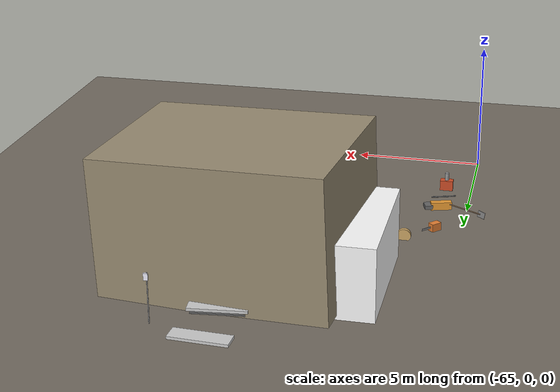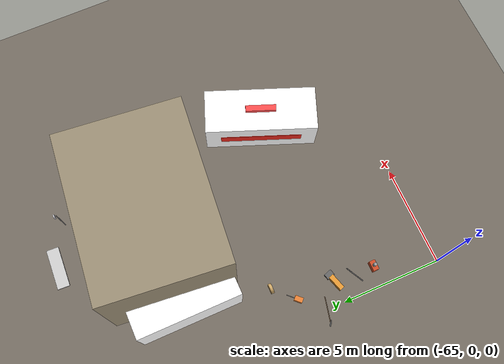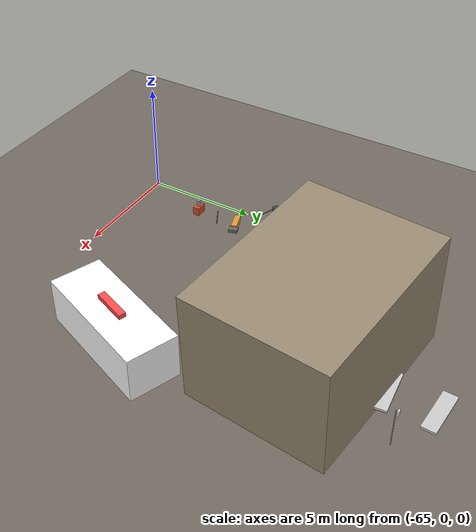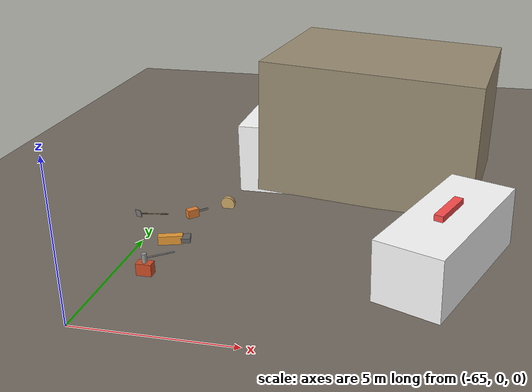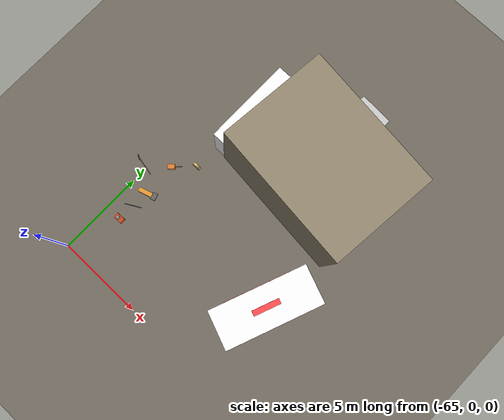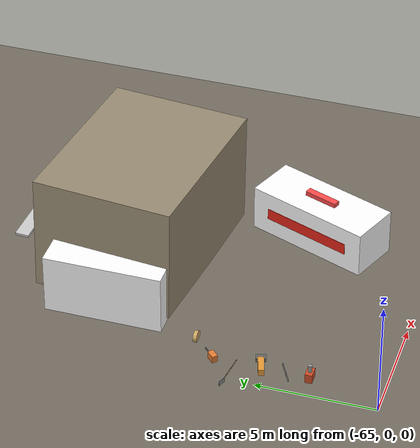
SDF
<sdf version="1.9">
 <world name="earthquake_zone">
  <model name="ground_plane">
   <static>true</static>
   <link name="link">
    <collision name="collision">
     <geometry><plane><normal>0 0 1</normal><size>300 300</size></plane></geometry>
     <surface><friction><ode><mu>100</mu><mu2>50</mu2></ode></friction></surface>
    </collision>
    <visual name="visual">
     <geometry><plane><normal>0 0 1</normal><size>300 300</size></plane></geometry>
     <material>
      <ambient>0.35 0.32 0.28 1</ambient>
      <diffuse>0.45 0.42 0.38 1</diffuse>
      <specular>0.05 0.05 0.05 1</specular>
     </material>
    </visual>
   </link>
  </model>
  <model name="shop_damaged">
   <static>true</static>
   <pose>-58 12 0 0 0.04 -0.1</pose>
   <link name="structure">
    <collision name="col"><geometry><box><size>8 6 5</size></box></geometry><pose>0 0 2.5 0 0 0</pose></collision>
    <visual name="facade">
     <pose>0 0 2.5 0 0 0</pose>
     <geometry><box><size>8 6 5</size></box></geometry>
     <material>
      <ambient>0.6 0.55 0.45 1</ambient>
      <diffuse>0.6 0.55 0.45 1</diffuse>
      <specular>0.2 0.2 0.2 1</specular>
      <pbr><metal><roughness>0.85</roughness><metalness>0.05</metalness></metal></pbr>
     </material>
    </visual>
   </link>
  </model>
  <model name="ambulance">
   <static>true</static>
   <pose>-55 5 0 0 0 1.2</pose>
   <link name="body">
    <collision name="col">
     <pose>0 0 1 0 0 0</pose>
     <geometry><box><size>5.5 2.2 2</size></box></geometry>
    </collision>
    <visual name="body">
     <pose>0 0 1 0 0 0</pose>
     <geometry><box><size>5.5 2.2 2</size></box></geometry>
     <material><ambient>0.9 0.9 0.9 1</ambient><diffuse>1 1 1 1</diffuse></material>
    </visual>
    <visual name="stripe">
     <pose>0 1.11 1 0 0 0</pose>
     <geometry><box><size>4 0.02 0.5</size></box></geometry>
     <material><ambient>0.8 0.1 0.05 1</ambient><diffuse>0.9 0.15 0.1 1</diffuse></material>
    </visual>
    <visual name="lightbar">
     <pose>0 0 2.1 0 0 0</pose>
     <geometry><box><size>1.5 0.3 0.2</size></box></geometry>
     <material>
      <ambient>0.8 0.2 0.2 1</ambient>
      <diffuse>1.0 0.3 0.3 1</diffuse>
      <emissive>1.0 0.2 0.2 1</emissive>
     </material>
    </visual>
   </link>
  </model>
  <model name="medical_tent">
   <static>true</static>
   <pose>-60 12 0 0 0 0</pose>
   <link name="tent">
    <collision name="col">
     <pose>0 0 1.3 0 0 0</pose>
     <geometry><box><size>6 5 2.6</size></box></geometry>
    </collision>
    <visual name="vis">
     <pose>0 0 1.3 0 0 0</pose>
     <geometry><box><size>6 5 2.6</size></box></geometry>
     <material><ambient>0.9 0.9 0.9 1</ambient><diffuse>1 1 1 1</diffuse></material>
    </visual>
    <visual name="cross_h">
     <pose>0 2.51 1.5 0 0 0</pose>
     <geometry><box><size>1.5 0.02 0.4</size></box></geometry>
     <material><ambient>0.8 0.1 0.1 1</ambient><diffuse>0.9 0.15 0.15 1</diffuse></material>
    </visual>
    <visual name="cross_v">
     <pose>0 2.51 1.5 0 0 0</pose>
     <geometry><box><size>0.4 0.02 1.5</size></box></geometry>
     <material><ambient>0.8 0.1 0.1 1</ambient><diffuse>0.9 0.15 0.15 1</diffuse></material>
    </visual>
   </link>
  </model>
  <model name="stretcher_1">
   <static>true</static>
   <pose>-58 15 0.3 0 0 0.1</pose>
   <link name="link">
    <visual name="bed">
     <geometry><box><size>2 0.6 0.1</size></box></geometry>
     <material><ambient>0.7 0.7 0.7 1</ambient><diffuse>0.8 0.8 0.8 1</diffuse></material>
    </visual>
    <visual name="frame">
     <pose>0 0 -0.15 0 0 0</pose>
     <geometry><box><size>1.8 0.5 0.05</size></box></geometry>
     <material><ambient>0.3 0.3 0.3 1</ambient><diffuse>0.4 0.4 0.4 1</diffuse></material>
    </visual>
   </link>
  </model>
  <model name="stretcher_2">
   <static>true</static>
   <pose>-58 17 0.3 0 0 -0.05</pose>
   <link name="link">
    <visual name="bed">
     <geometry><box><size>2 0.6 0.1</size></box></geometry>
     <material><ambient>0.7 0.7 0.7 1</ambient><diffuse>0.8 0.8 0.8 1</diffuse></material>
    </visual>
   </link>
  </model>
  <model name="medical_box">
   <static>true</static>
   <pose>-62 14 0.25 0 0 0</pose>
   <link name="link">
    <visual name="box">
     <geometry><box><size>0.6 0.4 0.5</size></box></geometry>
     <material><ambient>0.8 0.8 0.8 1</ambient><diffuse>0.9 0.9 0.9 1</diffuse></material>
    </visual>
    <visual name="cross">
     <pose>0 0.21 0 0 0 0</pose>
     <geometry><box><size>0.2 0.01 0.2</size></box></geometry>
     <material><ambient>0.8 0.1 0.1 1</ambient><diffuse>0.9 0.15 0.15 1</diffuse></material>
    </visual>
   </link>
  </model>
  <model name="iv_stand">
   <static>true</static>
   <pose>-56 16 0 0 0 0</pose>
   <link name="link">
    <visual name="pole">
     <pose>0 0 0.9 0 0 0</pose>
     <geometry><cylinder><radius>0.02</radius><length>1.8</length></cylinder></geometry>
     <material><ambient>0.5 0.5 0.5 1</ambient><diffuse>0.6 0.6 0.6 1</diffuse></material>
    </visual>
    <visual name="bag">
     <pose>0 0.1 1.7 0 0 0</pose>
     <geometry><box><size>0.15 0.05 0.25</size></box></geometry>
     <material><ambient>0.9 0.9 0.95 1</ambient><diffuse>0.95 0.95 1 1</diffuse></material>
    </visual>
   </link>
  </model>
  <model name="rescue_jaws">
   <static>true</static>
   <pose>-64 5 0.15 0 0 0.3</pose>
   <link name="link">
    <visual name="body">
     <geometry><box><size>0.8 0.25 0.3</size></box></geometry>
     <material><ambient>0.8 0.5 0.1 1</ambient><diffuse>0.9 0.6 0.2 1</diffuse></material>
    </visual>
    <visual name="jaws">
     <pose>0.5 0 0 0 0 0</pose>
     <geometry><box><size>0.3 0.4 0.15</size></box></geometry>
     <material><ambient>0.3 0.3 0.3 1</ambient><diffuse>0.4 0.4 0.4 1</diffuse></material>
    </visual>
   </link>
  </model>
  <model name="hydraulic_jack">
   <static>true</static>
   <pose>-64 3 0.2 0 0 0</pose>
   <link name="link">
    <visual name="base">
     <geometry><box><size>0.5 0.3 0.4</size></box></geometry>
     <material><ambient>0.7 0.2 0.1 1</ambient><diffuse>0.8 0.3 0.15 1</diffuse></material>
    </visual>
    <visual name="ram">
     <pose>0 0 0.35 0 0 0</pose>
     <geometry><cylinder><radius>0.08</radius><length>0.3</length></cylinder></geometry>
     <material><ambient>0.5 0.5 0.5 1</ambient><diffuse>0.6 0.6 0.6 1</diffuse></material>
    </visual>
   </link>
  </model>
  <model name="chainsaw">
   <static>true</static>
   <pose>-64 7 0.15 0 0 0.8</pose>
   <link name="link">
    <visual name="body">
     <geometry><box><size>0.4 0.25 0.3</size></box></geometry>
     <material><ambient>0.8 0.4 0.1 1</ambient><diffuse>0.9 0.5 0.2 1</diffuse></material>
    </visual>
    <visual name="blade">
     <pose>0.35 0 0 0 0 0</pose>
     <geometry><box><size>0.5 0.02 0.08</size></box></geometry>
     <material><ambient>0.4 0.4 0.4 1</ambient><diffuse>0.5 0.5 0.5 1</diffuse></material>
    </visual>
   </link>
  </model>
  <model name="rope_coil">
   <static>true</static>
   <pose>-63 8 0.15 1.57 0 0</pose>
   <link name="link">
    <visual name="coil">
     <geometry><cylinder><radius>0.25</radius><length>0.15</length></cylinder></geometry>
     <material><ambient>0.7 0.55 0.3 1</ambient><diffuse>0.8 0.65 0.4 1</diffuse></material>
    </visual>
   </link>
  </model>
  <model name="shovel">
   <static>true</static>
   <pose>-65 6 0.5 0.2 1.4 0</pose>
   <link name="handle">
    <visual name="vis">
     <geometry><cylinder><radius>0.02</radius><length>1.2</length></cylinder></geometry>
     <material><ambient>0.4 0.3 0.2 1</ambient><diffuse>0.5 0.4 0.3 1</diffuse></material>
    </visual>
   </link>
   <link name="blade">
    <pose>0 0 -0.65 0.3 0 0</pose>
    <visual name="vis">
     <geometry><box><size>0.25 0.02 0.3</size></box></geometry>
     <material><ambient>0.4 0.4 0.4 1</ambient><diffuse>0.5 0.5 0.5 1</diffuse></material>
    </visual>
   </link>
  </model>
  <model name="pry_bar">
   <static>true</static>
   <pose>-64 4 0.1 0 1.5 0.5</pose>
   <link name="link">
    <visual name="bar">
     <geometry><cylinder><radius>0.025</radius><length>1.0</length></cylinder></geometry>
     <material><ambient>0.3 0.3 0.3 1</ambient><diffuse>0.4 0.4 0.4 1</diffuse></material>
    </visual>
   </link>
  </model>
 </world>
</sdf>
